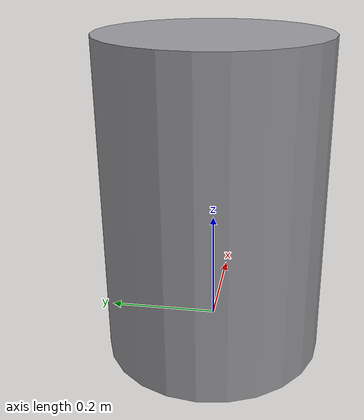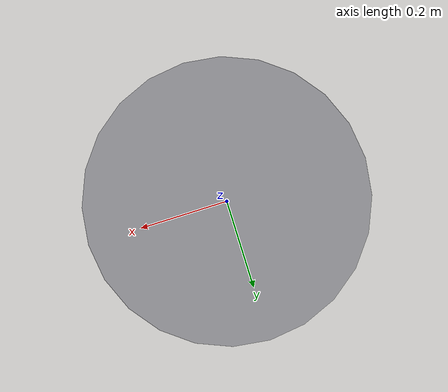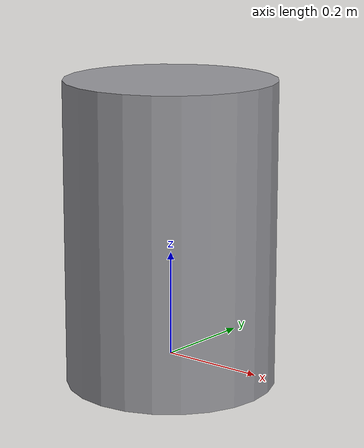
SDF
<?xml version='1.0' encoding='utf-8'?>
<sdf version="1.6">
  <model name="aws_robomaker_residential_Trash_01">
    <static>true</static>
    <link name="link">
      <collision name="collision_1">
        <pose>0 0 0.24 0 0 0</pose>
        <geometry>
          <cylinder>
            <radius>0.2</radius>
            <length>0.58</length>
          </cylinder>
        </geometry>
      </collision>
      <visual name="visual_1">
        <pose>0 0 0.24 0 0 0</pose>
        <geometry>
          <cylinder>
            <radius>0.2</radius>
            <length>0.58</length>
          </cylinder>
        </geometry>
        <material>
          <ambient>0.6 0.6 0.62 1</ambient>
          <diffuse>0.6 0.6 0.62 1</diffuse>
          <specular>0.08 0.08 0.08 1</specular>
        </material>
      </visual>
    </link>
  </model>
</sdf>
